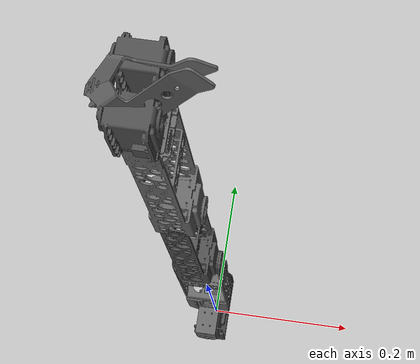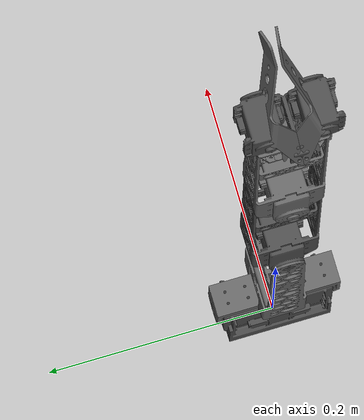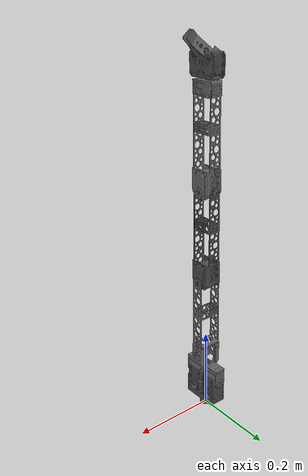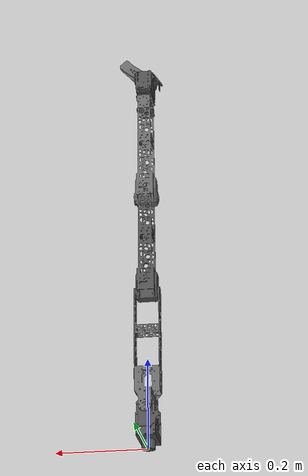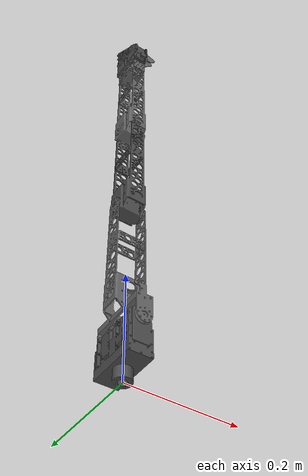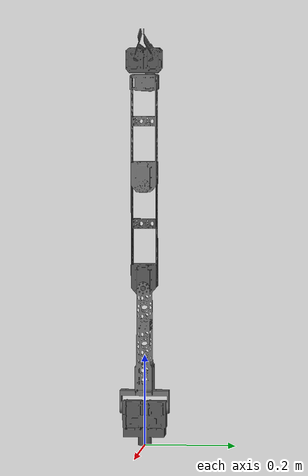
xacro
<robot name="dynamixel_arm">

	<!-- Load all the links  -->

	<link name="base_rotation_link">
    		<inertial>
      			<origin rpy="0 0 0" xyz="-1.11022302462516E-16 -7.80223872637444E-17 0.0660708417371112" />
      			<mass value="1.4054258533062" />
      			<inertia ixx="0.00159425912810341" ixy="-8.40269196653518E-08" ixz="-1.60925604895535E-19" iyy="0.000605522001732049" iyz="-6.08768470792684E-19" izz="0.00123388334665811" />
    		</inertial>
    		<visual>
      			<origin rpy="0 0 0" xyz="0 0 0" />
      			<geometry>
        			<mesh filename="package://robotican_description/komodo/meshes/base_rotation_link.STL" />
      			</geometry>
      			<material name="">
        			<color rgba="0.3 0.3 0.3 1" />
			</material>
    		</visual>
    		<collision>
      			<origin rpy="0 0 0" xyz="0 0 0" />
      			<geometry>
        			<mesh filename="package://robotican_description/komodo/meshes/base_rotation_link.STL" />
      			</geometry>
    		</collision>
  	</link>

	<link name="elbow1_link">
    		<inertial>
      			<origin rpy="0 0 0" xyz="3.38561240652013E-05 2.66604610292575E-06 0.0239321015909688" />
			<mass value="0.759959116000226" />
      			<inertia ixx="0.0011156254663426" ixy="3.16193221175592E-07" ixz="2.89169705133133E-06" iyy="0.00114606034071406" iyz="-8.11914906919631E-08" izz="0.000237163435713384" />
    		</inertial>
    		<visual>
      			<origin rpy="0 0 0" xyz="0 0 0" />
			<geometry>
        			<mesh filename="package://robotican_description/komodo/meshes/elbow1_link.STL" />
      			</geometry>
			<material name="">
        			<color rgba="0.3 0.3 0.3 1" />
      			</material>
    		</visual>
    		<collision>
      			<origin rpy="0 0 0" xyz="0 0 0" />
      			<geometry>
        			<mesh filename="package://robotican_description/komodo/meshes/elbow1_link.STL" />
      			</geometry>
    		</collision>
  	</link>

	<link name="elbow2_link">
    		<inertial>
      			<origin rpy="0 0 0" xyz="-2.29085121194481E-05 -0.000512185919169572 0.0885118786028204" />
      			<mass value="1.12138857800426" />
      			<inertia ixx="0.0110599202589784" ixy="3.04261287700186E-07" ixz="-1.22468079415109E-06" iyy="0.0110437302875007" iyz="-7.91547787630536E-05" izz="0.000331598270284794" />
    		</inertial>
    		<visual>
      			<origin rpy="0 0 0" xyz="0 0 0" />
      			<geometry>
        			<mesh filename="package://robotican_description/komodo/meshes/elbow2_link.STL" />
      			</geometry>
      			<material name="">
        			<color rgba="0.4 0.4 0.4 1" />
      			</material>
    		</visual>
    		<collision>
      			<origin rpy="0 0 0" xyz="0 0 0" />
      			<geometry>
        			<mesh filename="package://robotican_description/komodo/meshes/elbow2_link.STL" />
      			</geometry>
    		</collision>
  	</link>

	<link name="left_finger_link">
    		<inertial>
      			<origin rpy="0 0 0" xyz="-6.10622663543836E-16 0.0205697573116852 0.0301832532936965" />
      			<mass value="0.0111981711598485" />
      			<inertia ixx="9.77349829713274E-06" ixy="6.1354405537333E-20" ixz="3.95573177730842E-20" iyy="1.11277552627936E-05" iyz="2.19026618569787E-06" izz="3.8860219521149E-06" />
    		</inertial>
    		<visual>
      			<origin rpy="0.185 0 0" xyz="0 0 0" />
      			<geometry>
        			<mesh filename="package://robotican_description/komodo/meshes/left_finger_link.STL" />
      			</geometry>
      			<material name="">
        			<color rgba="0.4 0.4 0.4 1" />
      			</material>
    		</visual>
    		<collision>
      			<origin rpy="0 0 0" xyz="0 0 0" />
      			<geometry>
        			<mesh filename="package://robotican_description/komodo/meshes/left_finger_link.STL" />
      			</geometry>
    		</collision>
	</link>

	<link name="right_finger_link">
    		<inertial>
      			<origin rpy="0 0 0" xyz="2.77555756156289E-16 -0.0205697573116854 0.0301832532936965" />
      			<mass value="0.0111981711598485" />
      			<inertia ixx="9.7734982971327E-06" ixy="1.80407068651258E-20" ixz="2.78908224261042E-20" iyy="1.11277552627935E-05" iyz="-2.19026618569788E-06" izz="3.88602195211489E-06" />
    		</inertial>
    		<visual>
      			<origin rpy="-0.185 0 0" xyz="0 0 0" />
      			<geometry>
        			<mesh filename="package://robotican_description/komodo/meshes/right_finger_link.STL" />
      			</geometry>
     	 		<material name="">
        			<color rgba="0.4 0.4 0.4 1" />
      			</material>
    		</visual>
    		<collision>
      			<origin rpy="0 0 0" xyz="0 0 0" />
      			<geometry>
        			<mesh filename="package://robotican_description/komodo/meshes/right_finger_link.STL" />
      			</geometry>
    		</collision>
  	</link>

	<link name="shoulder_link">
    		<inertial>
      			<origin rpy="0 0 0" xyz="-4.66231481405233E-06 -9.82289126283389E-05 0.0772888499682157" />
      			<mass value="0.191480823048406" />
      			<inertia ixx="0.00107301595696304" ixy="-2.9789063890745E-07" ixz="-2.01216953964121E-08" iyy="0.000975953125213584" iyz="-1.19601921452086E-06" izz="0.000217659789393094" />
    		</inertial>
    		<visual>
      			<origin rpy="0 0 0" xyz="0 0 0" />
      			<geometry>
        			<mesh filename="package://robotican_description/komodo/meshes/shoulder_link.STL" />
      			</geometry>
      			<material name="">
        			<color rgba="0.4 0.4 0.4 1" />
      			</material>
    		</visual>
    		<collision>
      			<origin rpy="0 0 0" xyz="0 0 0" />
      			<geometry>
        			<mesh filename="package://robotican_description/komodo/meshes/shoulder_link.STL" />
      			</geometry>
    		</collision>
  	</link>

	<link name="wrist_link">
    		<inertial>
      			<origin rpy="0 0 0" xyz="-0.000140374211043626 4.00707618562063E-10 0.0303673809619358" />
      			<mass value="0.717337417215465" />
      			<inertia ixx="0.000486392340366094" ixy="4.20757000035677E-12" ixz="-3.91843889020299E-06" iyy="0.000211170064630335" iyz="2.79335159568522E-12" izz="0.000437528795624211" />
    		</inertial>
    		<visual>
      			<origin rpy="0 0 0" xyz="0 0 0" />
      			<geometry>
        			<mesh filename="package://robotican_description/komodo/meshes/wrist_link.STL" />
      			</geometry>
      			<material name="">
        			<color rgba="0.3 0.3 0.3 1" />
      			</material>
    		</visual>
    		<collision>
      			<origin rpy="0 0 0" xyz="0 0 0" />
      			<geometry>
        			<mesh filename="package://robotican_description/komodo/meshes/wrist_link.STL" />
      			</geometry>
    		</collision>
  	</link>
	<!--         END         -->

	<!-- Load all the joints -->

	<joint name="shoulder_joint" type="revolute">
    		<origin xyz="0 0 0.0834999999999999" rpy="-4.20159904047482E-15 -5.97509793174248E-16 9.93431320775303E-15" />
    		<parent link="base_rotation_link" />
    		<child link="shoulder_link" />
    		<axis xyz="0 1 0" />
    		<limit lower="-1.692969" upper="1.692969" effort="2000" velocity="0" />
  	</joint>

	<joint name="elbow1_joint" type="revolute">
    		<origin xyz="0 -0.000251155668932789 0.266305434894181" rpy="1.44504380352115E-15 1.11628850952447E-06 -9.93431159466724E-15" />
    		<parent link="shoulder_link" />
    		<child link="elbow1_link" />
    		<axis xyz="-0.999999999998754 0 0" />
    		<limit lower="-2.4434" upper="2.4434" effort="100" velocity="0" />
  	</joint>

	<joint name="elbow2_joint" type="revolute">
    		<origin xyz="0 0 0.223999999999899" rpy="-4.51048856041191E-16 3.35869632765754E-16 1.57079632687657" />
    		<parent link="elbow1_link" />
    		<child link="elbow2_link" />
    		<axis xyz="1 0 0" />
    		<limit lower="-2.4434" upper="2.4434" effort="10" velocity="0" />
  	</joint>

	<joint name="wrist_joint" type="revolute">
    		<origin xyz="0 0.0 0.244749999999997" rpy="-4.43972025628984E-16 -3.35842401421639E-15 -1.57079632687657" />
    		<parent link="elbow2_link" />
    		<child link="wrist_link" />
    		<axis xyz="0 0 0.999999999998754" />
    		<limit lower="-1.91986" upper="1.91986" effort="10" velocity="0" />
  	</joint>

	<joint name="left_finger_joint" type="revolute">
    		<origin xyz="-0.000250000000000111 0.021 0.0422500000000001" rpy="2.85979682697881E-15 1.01870746742143E-16 3.19235832636806E-21" />
    		<parent link="wrist_link" />
   		<child link="left_finger_link" />
    		<axis xyz="1 0 0" />
    		<limit lower="-0.87266" upper="0.87266" effort="10" velocity="0" />
  	</joint>

	<joint name="right_finger_joint" type="revolute">
    		<origin xyz="-0.00024999999999889 -0.021 0.0422499999999999" rpy="0 3.19686557214722E-37 0" />
    		<parent link="wrist_link" />
    		<child link="right_finger_link" />
    		<axis xyz="1 0 0" />
    		<limit lower="-0.87266" upper="0.87266" effort="10" velocity="0" />
  	</joint>

	<!--         END         -->

</robot>
